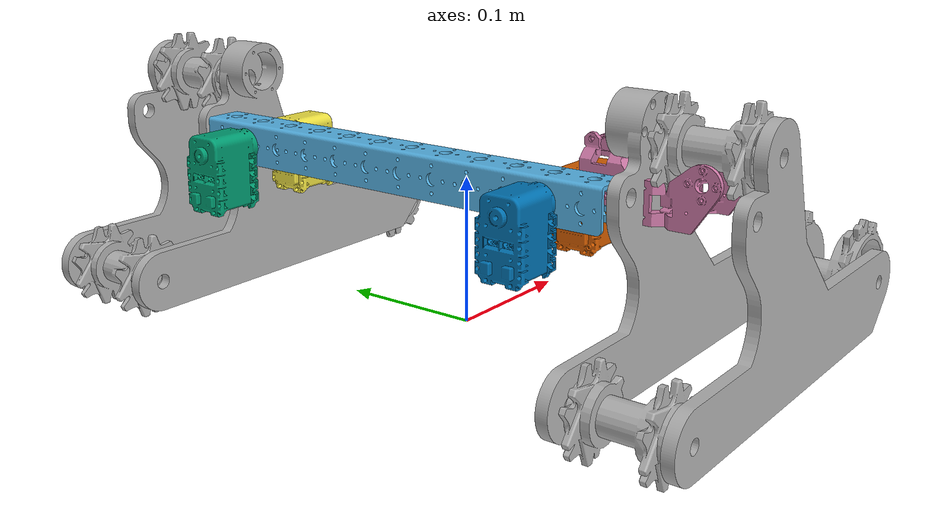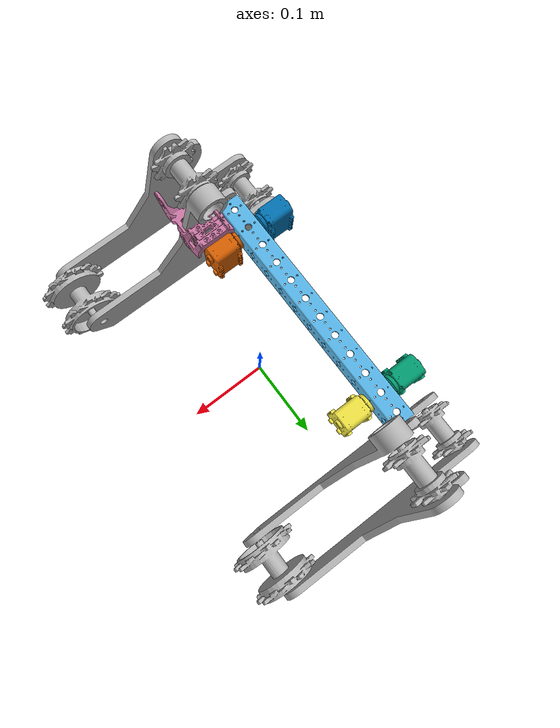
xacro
<?xml version="1.0" ?>
<robot name="aaly">

  <joint name="fixed" type="floating">
      <parent link="world"/>
      <child link="aaly__base_link"/>
  </joint>

  <joint name="aaly__knee_left_back_joint" type="revolute">
    <parent link="aaly__base_link"/>
    <child link="aaly__knee_left_back_motor"/>
    <origin rpy="0  0  0" xyz="-0.107    0.1144   0.12127"/>
    <axis xyz="-1  0  0"/>
    <limit effort="100.0" lower="0.0" upper="5.23598775598" velocity="1.0"/>
  </joint>
  <joint name="aaly__knee_left_front_joint" type="revolute">
    <parent link="aaly__base_link"/>
    <child link="aaly__knee_left_front_motor"/>
    <origin rpy="0       0       3.14159" xyz="-0.034    0.1144   0.12127"/>
    <axis xyz="1  0  0"/>
    <limit effort="100.0" lower="0.0" upper="5.23598775598" velocity="1.0"/>
  </joint>
  <joint name="aaly__knee_right_back_joint" type="revolute">
    <parent link="aaly__base_link"/>
    <child link="aaly__knee_right_back_motor"/>
    <origin rpy="0  0  0" xyz="-0.107   -0.1144   0.12127"/>
    <axis xyz="1  0  0"/>
    <limit effort="100.0" lower="0.0" upper="5.23598775598" velocity="1.0"/>
  </joint>
  <joint name="aaly__knee_right_front_joint" type="revolute">
    <parent link="aaly__base_link"/>
    <child link="aaly__knee_right_front_motor"/>
    <origin rpy="0       0       3.14159" xyz="-0.034   -0.1144   0.12127"/>
    <axis xyz="-1  0  0"/>
    <limit effort="100.0" lower="0.0" upper="5.23598775598" velocity="1.0"/>
  </joint>
  <joint name="aaly__leg_right_front_joint" type="fixed">
    <parent link="aaly__knee_right_front_motor"/>
    <child link="aaly__leg_right_front"/>
    <origin rpy="0  0  0" xyz="0     0.034  0"/>
    <axis xyz="0  0  0"/>
    <limit effort="0" lower="0" upper="0" velocity="0"/>
  </joint>
  <joint name="aaly__Left_Track_Side_joint" type="fixed">
    <parent link="aaly__base_link"/>
    <child link="aaly__Left_Side_Track_Support"/>
    <origin rpy="0  0  0" xyz="-0.01373 -0.15812  0.07062"/>
    <axis xyz="0  0  0"/>
    <limit effort="0" lower="0" upper="0" velocity="0"/>
  </joint>
  <joint name="aaly__Right_Track_Side_joint" type="fixed">
    <parent link="aaly__base_link"/>
    <child link="aaly__Right_Side_Track_Support"/>
    <origin rpy="0  0  0" xyz="-0.01373  0.15812  0.07062"/>
    <axis xyz="0  0  0"/>
    <limit effort="0" lower="0" upper="0" velocity="0"/>
  </joint>
  <joint name="aaly__drum_joint1" type="fixed">
    <parent link="aaly__Left_Side_Track_Support"/>
    <child link="aaly__drum1"/>
    <origin rpy="1.57079  0       0" xyz="-0.1111  -0.038   -0.04062"/>
    <axis xyz="0  0 -1"/>
    <limit effort="0" lower="0" upper="0" velocity="0"/>
  </joint>
  <joint name="aaly__drum_joint2" type="fixed">
    <parent link="aaly__Right_Side_Track_Support"/>
    <child link="aaly__drum2"/>
    <origin rpy="1.57079  0       0" xyz="-0.1111   0.038   -0.04062"/>
    <axis xyz="0  0 -1"/>
    <limit effort="0" lower="0" upper="0" velocity="0"/>
  </joint>
  <joint name="aaly__drum_joint3" type="fixed">
    <parent link="aaly__Left_Side_Track_Support"/>
    <child link="aaly__drum3"/>
    <origin rpy="1.57079  0       0" xyz="0.14157 -0.038   -0.033"/>
    <axis xyz="0  0 -1"/>
    <limit effort="0" lower="0" upper="0" velocity="0"/>
  </joint>
  <joint name="aaly__drum_joint4" type="fixed">
    <parent link="aaly__Right_Side_Track_Support"/>
    <child link="aaly__drum4"/>
    <origin rpy="1.57079  0       0" xyz="0.14157  0.038   -0.033"/>
    <axis xyz="0  0 -1"/>
    <limit effort="0" lower="0" upper="0" velocity="0"/>
  </joint>
  <joint name="aaly__drum_joint5" type="fixed">
    <parent link="aaly__Left_Side_Track_Support"/>
    <child link="aaly__drum5"/>
    <origin rpy="1.57079  0       0" xyz="-0.03231 -0.038    0.08371"/>
    <axis xyz="0  0 -1"/>
    <limit effort="0" lower="0" upper="0" velocity="0"/>
  </joint>
  <joint name="aaly__drum_joint6" type="fixed">
    <parent link="aaly__Right_Side_Track_Support"/>
    <child link="aaly__drum6"/>
    <origin rpy="1.57079  0       0" xyz="-0.03231  0.038    0.08371"/>
    <axis xyz="0  0 -1"/>
    <limit effort="0" lower="0" upper="0" velocity="0"/>
  </joint>
  <joint name="aaly__Left_Side_Track_Cover_joint" type="fixed">
    <parent link="aaly__Left_Side_Track_Support"/>
    <child link="aaly__Left_Side_Track_Cover"/>
    <origin rpy="0  0  0" xyz="0.00029 -0.07299 -0.00899"/>
    <axis xyz="0  0  0"/>
    <limit effort="0" lower="0" upper="0" velocity="0"/>
  </joint>
  <joint name="aaly__Right_Side_Track_Cover_joint" type="fixed">
    <parent link="aaly__Right_Side_Track_Support"/>
    <child link="aaly__Right_Side_Track_Cover"/>
    <origin rpy="0  0  0" xyz="0.00029  0.07299 -0.00899"/>
    <axis xyz="0  0  0"/>
    <limit effort="0" lower="0" upper="0" velocity="0"/>
  </joint>

  <!-- Used for fixing robot to Gazebo 'base_link' -->
  <link name="world"/>

  <link name="aaly__base_link">
    <inertial>
      <mass value="0.36"/>
      <origin rpy="0  0  0" xyz="0  0  0"/>
      <inertia ixx="0.0028086383999999997" ixy="0.0" ixz="0.0" iyy="4.3094400000000005e-05" iyz="0.0" izz="0.0028086383999999997"/>
    </inertial>
    <collision name="aaly___base_link_collision">
      <origin rpy="0  0  0" xyz="-0.07     0       0.12427"/>
      <geometry>
        <box size="0.026988 0.3000 0.026988"/>
      </geometry>
    </collision>
    <visual name="aaly___base_link_visual">
      <origin rpy="0  0  0" xyz="-0.07     0       0.12427"/>
      <geometry>
        <mesh filename="package://aaly__urdf/meshes/Horizontal_Support_Bar_ASB-512.dae" scale="1.0 1.0 1.0"/>
      </geometry>
    </visual>
  </link>
  <link name="aaly__knee_left_back_motor">
    <inertial>
      <mass value="0.05"/>
      <origin rpy="0  0  0" xyz="0  0  0"/>
      <inertia ixx="1.7083333333333333e-05" ixy="0.0" ixz="0.0" iyy="1.4683333333333334e-05" iyz="0.0" izz="1.0933333333333333e-05"/>
    </inertial>
    <collision name="aaly__knee_left_back_motor_collision">
      <origin rpy="0  0  0" xyz="0  0  0"/>
      <geometry>
        <box size="0.04 0.032 0.050"/>
      </geometry>
    </collision>
    <visual name="aaly__knee_left_back_motor_visual">
      <origin rpy="0  0  0" xyz="0  0  0"/>
      <geometry>
        <mesh filename="package://aaly__urdf/meshes/AX12-A_origin_same_as_center_of_mass.stl" scale="1.0 1.0 1.0"/>
      </geometry>
    </visual>
  </link>
  <link name="aaly__knee_left_front_motor">
    <inertial>
      <mass value="0.05"/>
      <origin rpy="0  0  0" xyz="0  0  0"/>
      <inertia ixx="1.7083333333333333e-05" ixy="0.0" ixz="0.0" iyy="1.4683333333333334e-05" iyz="0.0" izz="1.0933333333333333e-05"/>
    </inertial>
    <collision name="aaly__knee_left_front_motor_collision">
      <origin rpy="0  0  0" xyz="0  0  0"/>
      <geometry>
        <box size="0.04 0.032 0.050"/>
      </geometry>
    </collision>
    <visual name="aaly__knee_left_front_motor_visual">
      <origin rpy="0  0  0" xyz="0  0  0"/>
      <geometry>
        <mesh filename="package://aaly__urdf/meshes/AX12-A_origin_same_as_center_of_mass.stl" scale="1.0 1.0 1.0"/>
      </geometry>
    </visual>
  </link>
  <link name="aaly__knee_right_back_motor">
    <inertial>
      <mass value="0.05"/>
      <origin rpy="0  0  0" xyz="0  0  0"/>
      <inertia ixx="1.7083333333333333e-05" ixy="0.0" ixz="0.0" iyy="1.4683333333333334e-05" iyz="0.0" izz="1.0933333333333333e-05"/>
    </inertial>
    <collision name="aaly__knee_right_back_motor_collision">
      <origin rpy="0  0  0" xyz="0  0  0"/>
      <geometry>
        <box size="0.04 0.032 0.050"/>
      </geometry>
    </collision>
    <visual name="aaly__knee_right_back_motor_visual">
      <origin rpy="0  0  0" xyz="0  0  0"/>
      <geometry>
        <mesh filename="package://aaly__urdf/meshes/AX12-A_origin_same_as_center_of_mass.stl" scale="1.0 1.0 1.0"/>
      </geometry>
    </visual>
  </link>
  <link name="aaly__knee_right_front_motor">
    <inertial>
      <mass value="0.05"/>
      <origin rpy="0  0  0" xyz="0  0  0"/>
      <inertia ixx="1.7083333333333333e-05" ixy="0.0" ixz="0.0" iyy="1.4683333333333334e-05" iyz="0.0" izz="1.0933333333333333e-05"/>
    </inertial>
    <collision name="aaly__knee_right_front_motor_collision">
      <origin rpy="0  0  0" xyz="0  0  0"/>
      <geometry>
        <box size="0.04 0.032 0.050"/>
      </geometry>
    </collision>
    <visual name="aaly__knee_right_front_motor_visual">
      <origin rpy="0  0  0" xyz="0  0  0"/>
      <geometry>
        <mesh filename="package://aaly__urdf/meshes/AX12-A_origin_same_as_center_of_mass.stl" scale="1.0 1.0 1.0"/>
      </geometry>
    </visual>
  </link>
  <link name="aaly__leg_right_front">
    <inertial>
      <mass value="0.05"/>
      <origin rpy="0  0  0" xyz="0  0  0"/>
      <inertia ixx="1.7083333333333333e-05" ixy="0.0" ixz="0.0" iyy="1.4683333333333334e-05" iyz="0.0" izz="1.0933333333333333e-05"/>
    </inertial>
    <collision name="aaly__leg_right_front_collision">
      <origin rpy="0  0  0" xyz="0  0  0"/>
      <geometry>
        <box size="0.04 0.032 0.050"/>
      </geometry>
    </collision>
    <visual name="aaly__leg_right_front_visual">
      <origin rpy="0  0  0" xyz="0  0  0"/>
      <geometry>
        <mesh filename="package://aaly__urdf/meshes/Leg_Right_Front.stl" scale="1.0 1.0 1.0"/>
      </geometry>
    </visual>
  </link>
  <link name="aaly__Left_Side_Track_Support">
    <inertial>
      <mass value="0.05"/>
      <origin rpy="0  0  0" xyz="0  0  0"/>
      <inertia ixx="1.7083333333333333e-05" ixy="0.0" ixz="0.0" iyy="1.4683333333333334e-05" iyz="0.0" izz="1.0933333333333333e-05"/>
    </inertial>
    <collision name="aaly___Left_Side_Track_Support_collision">
      <origin rpy="0  0  0" xyz="0     0     0.015"/>
      <geometry>
        <mesh filename="package://aaly__urdf/meshes/Track_Support_Collision_Mesh.dae" scale="1.0 1.0 1.0"/>
      </geometry>
    </collision>
    <visual name="aaly___Left_Side_Track_Support_visual">
      <origin rpy="0  0  0" xyz="0  0  0"/>
      <geometry>
        <mesh filename="package://aaly__urdf/meshes/Track_Support_Left_Side.dae" scale="1.0 1.0 1.0"/>
      </geometry>
    </visual>
  </link>
  <link name="aaly__Right_Side_Track_Support">
    <inertial>
      <mass value="0.05"/>
      <origin rpy="0  0  0" xyz="0  0  0"/>
      <inertia ixx="1.7083333333333333e-05" ixy="0.0" ixz="0.0" iyy="1.4683333333333334e-05" iyz="0.0" izz="1.0933333333333333e-05"/>
    </inertial>
    <collision name="aaly___Right_Side_Track_Support_collision">
      <origin rpy="0  0  0" xyz="0     0     0.015"/>
      <geometry>
        <mesh filename="package://aaly__urdf/meshes/Track_Support_Collision_Mesh.dae" scale="1.0 1.0 1.0"/>
      </geometry>
    </collision>
    <visual name="aaly___Left_Side_Track_Support_visual">
      <origin rpy="0  0  0" xyz="0  0  0"/>
      <geometry>
        <mesh filename="package://aaly__urdf/meshes/Track_Support_Right_Side.dae" scale="1.0 1.0 1.0"/>
      </geometry>
    </visual>
  </link>
  <link name="aaly__drum1">
    <inertial>
      <mass value="0.1"/>
      <origin rpy="0  0  0" xyz="0  0  0"/>
      <inertia ixx="4.0003370625000006e-05" ixy="0.0" ixz="0.0" iyy="4.0003370625000006e-05" iyz="0.0" izz="3.624778125000001e-05"/>
    </inertial>
    <collision name="aaly___drum1_collision">
      <origin rpy="0  0  0" xyz="0  0  0"/>
      <geometry>
        <cylinder length="0.05124" radius="0.026925"/>
      </geometry>
    </collision>
    <visual name="aaly___drum1_visual">
      <origin rpy="0  0  0" xyz="0  0  0"/>
      <geometry>
        <mesh filename="package://aaly__urdf/meshes/Lynx_Sproket6in_Hub13.dae" scale="1.0 1.0 1.0"/>
      </geometry>
    </visual>
  </link>
  <link name="aaly__drum2">
    <inertial>
      <mass value="0.1"/>
      <origin rpy="0  0  0" xyz="0  0  0"/>
      <inertia ixx="4.0003370625000006e-05" ixy="0.0" ixz="0.0" iyy="4.0003370625000006e-05" iyz="0.0" izz="3.624778125000001e-05"/>
    </inertial>
    <collision name="aaly___drum2_collision">
      <origin rpy="0  0  0" xyz="0  0  0"/>
      <geometry>
        <cylinder length="0.05124" radius="0.026925"/>
      </geometry>
    </collision>
    <visual name="aaly___drum2_visual">
      <origin rpy="0  0  0" xyz="0  0  0"/>
      <geometry>
        <mesh filename="package://aaly__urdf/meshes/Lynx_Sproket6in_Hub13.dae" scale="1.0 1.0 1.0"/>
      </geometry>
    </visual>
  </link>
  <link name="aaly__drum3">
    <inertial>
      <mass value="0.15"/>
      <origin rpy="0  0  0" xyz="0  0  0"/>
      <inertia ixx="5.5414245624999996e-05" ixy="0.0" ixz="0.0" iyy="5.5414245624999996e-05" iyz="0.0" izz="0.000100604296875"/>
    </inertial>
    <collision name="aaly___drum3_collision">
      <origin rpy="0  0  0" xyz="0  0  0"/>
      <geometry>
        <cylinder length="0.05124" radius="0.036625"/>
      </geometry>
    </collision>
    <visual name="aaly___drum3_visual">
      <origin rpy="0  0  0" xyz="0  0  0"/>
      <geometry>
        <mesh filename="package://aaly__urdf/meshes/Lynx_Sproket9in_Hub13.dae" scale="1.0 1.0 1.0"/>
      </geometry>
    </visual>
  </link>
  <link name="aaly__drum4">
    <inertial>
      <mass value="0.15"/>
      <origin rpy="0  0  0" xyz="0  0  0"/>
      <inertia ixx="5.5414245624999996e-05" ixy="0.0" ixz="0.0" iyy="5.5414245624999996e-05" iyz="0.0" izz="0.000100604296875"/>
    </inertial>
    <collision name="aaly___drum4_collision">
      <origin rpy="0  0  0" xyz="0  0  0"/>
      <geometry>
        <cylinder length="0.05124" radius="0.036625"/>
      </geometry>
    </collision>
    <visual name="aaly___drum4_visual">
      <origin rpy="0  0  0" xyz="0  0  0"/>
      <geometry>
        <mesh filename="package://aaly__urdf/meshes/Lynx_Sproket9in_Hub13.dae" scale="1.0 1.0 1.0"/>
      </geometry>
    </visual>
  </link>
  <link name="aaly__drum5">
    <inertial>
      <mass value="0.1"/>
      <origin rpy="0  0  0" xyz="0  0  0"/>
      <inertia ixx="4.0003370625000006e-05" ixy="0.0" ixz="0.0" iyy="4.0003370625000006e-05" iyz="0.0" izz="3.624778125000001e-05"/>
    </inertial>
    <collision name="aaly___drum5_collision">
      <origin rpy="0  0  0" xyz="0  0  0"/>
      <geometry>
        <cylinder length="0.05124" radius="0.027025"/>
      </geometry>
    </collision>
    <visual name="aaly___drum5_visual">
      <origin rpy="0  0  0" xyz="0  0  0"/>
      <geometry>
        <mesh filename="package://aaly__urdf/meshes/Lynx_Sproket6in_Hub13.dae" scale="1.0 1.0 1.0"/>
      </geometry>
    </visual>
  </link>
  <link name="aaly__drum6">
    <inertial>
      <mass value="0.1"/>
      <origin rpy="0  0  0" xyz="0  0  0"/>
      <inertia ixx="4.0003370625000006e-05" ixy="0.0" ixz="0.0" iyy="4.0003370625000006e-05" iyz="0.0" izz="3.624778125000001e-05"/>
    </inertial>
    <collision name="aaly___drum6_collision">
      <origin rpy="0  0  0" xyz="0  0  0"/>
      <geometry>
        <cylinder length="0.05124" radius="0.027025"/>
      </geometry>
    </collision>
    <visual name="aaly___drum6_visual">
      <origin rpy="0  0  0" xyz="0  0  0"/>
      <geometry>
        <mesh filename="package://aaly__urdf/meshes/Lynx_Sproket6in_Hub13.dae" scale="1.0 1.0 1.0"/>
      </geometry>
    </visual>
  </link>
  <link name="aaly__Left_Side_Track_Cover">
    <inertial>
      <mass value="0.05"/>
      <origin rpy="0  0  0" xyz="0  0  0"/>
      <inertia ixx="1.7083333333333333e-05" ixy="0.0" ixz="0.0" iyy="1.4683333333333334e-05" iyz="0.0" izz="1.0933333333333333e-05"/>
    </inertial>
    <collision name="aaly___Left_Side_Track_Cover_collision">
      <origin rpy="0  0  0" xyz="0     0     0.015"/>
      <geometry>
        <mesh filename="package://aaly__urdf/meshes/Track_Support_Collision_Mesh.dae" scale="1.0 1.0 1.0"/>
      </geometry>
    </collision>
    <visual name="aaly___Left_Side_Track_Cover_visual">
      <origin rpy="0  0  0" xyz="0  0  0"/>
      <geometry>
        <mesh filename="package://aaly__urdf/meshes/Track_Support_Cover_Side.dae" scale="1.0 1.0 1.0"/>
      </geometry>
    </visual>
  </link>
  <link name="aaly__Right_Side_Track_Cover">
    <inertial>
      <mass value="0.05"/>
      <origin rpy="0  0  0" xyz="0  0  0"/>
      <inertia ixx="1.7083333333333333e-05" ixy="0.0" ixz="0.0" iyy="1.4683333333333334e-05" iyz="0.0" izz="1.0933333333333333e-05"/>
    </inertial>
    <collision name="aaly___Right_Side_Track_Cover_collision">
      <origin rpy="0  0  0" xyz="0     0     0.015"/>
      <geometry>
        <mesh filename="package://aaly__urdf/meshes/Track_Support_Collision_Mesh.dae" scale="1.0 1.0 1.0"/>
      </geometry>
    </collision>
    <visual name="aaly___Right_Side_Track_Cover_visual">
      <origin rpy="0  0  0" xyz="0  0  0"/>
      <geometry>
        <mesh filename="package://aaly__urdf/meshes/Track_Support_Cover_Side.dae" scale="1.0 1.0 1.0"/>
      </geometry>
    </visual>
  </link>

  <transmission name="tran1">
    <type>transmission_interface/SimpleTransmission</type>
    <joint name="aaly__knee_left_back_joint">
      <hardwareInterface>hardware_interface/PositionJointInterface</hardwareInterface>
    </joint>
    <actuator name="aaly__knee_left_back_motor">
      <hardwareInterface>hardware_interface/PositionJointInterface</hardwareInterface>
      <mechanicalReduction>1</mechanicalReduction>
    </actuator>
  </transmission>

  <transmission name="tran2">
    <type>transmission_interface/SimpleTransmission</type>
    <joint name="aaly__knee_left_front_joint">
      <hardwareInterface>hardware_interface/PositionJointInterface</hardwareInterface>
    </joint>
    <actuator name="aaly__knee_left_front_motor">
      <hardwareInterface>hardware_interface/PositionJointInterface</hardwareInterface>
      <mechanicalReduction>1</mechanicalReduction>
    </actuator>
  </transmission>

  <transmission name="tran3">
    <type>transmission_interface/SimpleTransmission</type>
    <joint name="aaly__knee_right_back_joint">
      <hardwareInterface>hardware_interface/PositionJointInterface</hardwareInterface>
    </joint>
    <actuator name="aaly__knee_right_back_motor">
      <hardwareInterface>hardware_interface/PositionJointInterface</hardwareInterface>
      <mechanicalReduction>1</mechanicalReduction>
    </actuator>
  </transmission>

  <transmission name="tran4">
    <type>transmission_interface/SimpleTransmission</type>
    <joint name="aaly__knee_right_front_joint">
      <hardwareInterface>hardware_interface/PositionJointInterface</hardwareInterface>
    </joint>
    <actuator name="aaly__knee_right_front_motor">
      <hardwareInterface>hardware_interface/PositionJointInterface</hardwareInterface>
      <mechanicalReduction>1</mechanicalReduction>
    </actuator>
  </transmission>

</robot>
